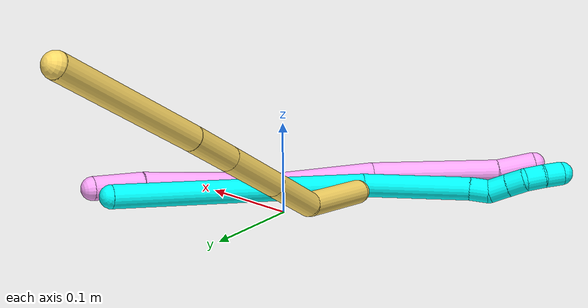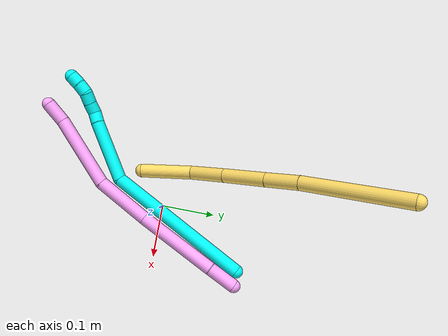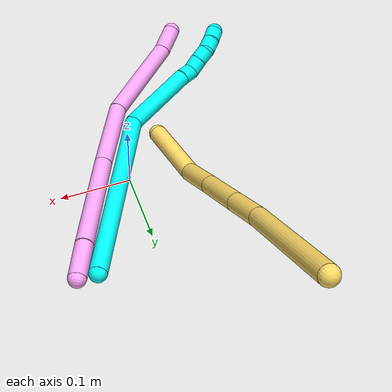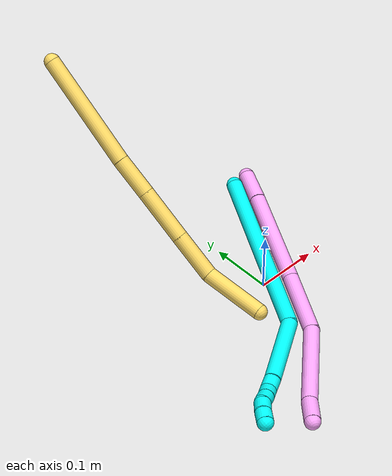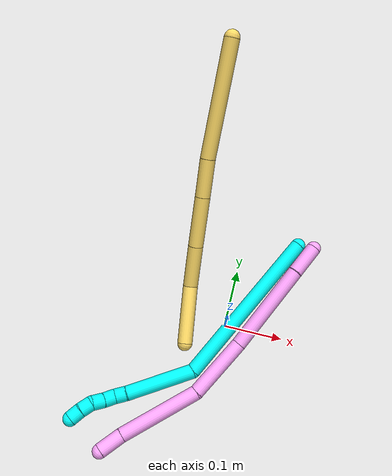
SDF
<sdf version="1.7">
 <world name="default">
  <model name="3">
   <static>0</static>
   <link name="3">
    <collision name="collision-cylinder-e_1_1_4">
     <pose>-0.031944 -0.07052 0.117905 0.539028 -0.228454 -0.063362</pose>
     <geometry><cylinder><radius>0.0125</radius><length>0.282101</length></cylinder></geometry>
     <surface>
      <friction><ode><mu>1.16</mu><mu2>1.16</mu2><slip1>0</slip1><slip2>0</slip2></ode></friction>
      <contact><ode><kp>1e+06</kp><kd>1</kd><max_vel>0</max_vel><min_depth>0.001</min_depth></ode></contact>
     </surface>
    </collision>
    <visual name="visual-cylinder-e_1_1_4">
     <pose>-0.031944 -0.07052 0.117905 0.539028 -0.228454 -0.063362</pose>
     <geometry><cylinder><radius>0.0125</radius><length>0.282101</length></cylinder></geometry>
     <material><ambient>0.003922 1 0.996078 1</ambient></material>
    </visual>
    <collision name="collision-cylinder-e_2_4_5">
     <pose>-0.07341 -0.191939 0.261907 1.09703 -0.164963 -0.100946</pose>
     <geometry><cylinder><radius>0.0125</radius><length>0.115971</length></cylinder></geometry>
     <surface>
      <friction><ode><mu>1.16</mu><mu2>1.16</mu2><slip1>0</slip1><slip2>0</slip2></ode></friction>
      <contact><ode><kp>1e+06</kp><kd>1</kd><max_vel>0</max_vel><min_depth>0.001</min_depth></ode></contact>
     </surface>
    </collision>
    <visual name="visual-cylinder-e_2_4_5">
     <pose>-0.07341 -0.191939 0.261907 1.09703 -0.164963 -0.100946</pose>
     <geometry><cylinder><radius>0.0125</radius><length>0.115971</length></cylinder></geometry>
     <material><ambient>0.003922 1 0.996078 1</ambient></material>
    </visual>
    <collision name="collision-cylinder-e_3_5_6">
     <pose>-0.083462 -0.252233 0.292317 1.14033 -0.051206 -0.032837</pose>
     <geometry><cylinder><radius>0.0125</radius><length>0.020705</length></cylinder></geometry>
     <surface>
      <friction><ode><mu>1.16</mu><mu2>1.16</mu2><slip1>0</slip1><slip2>0</slip2></ode></friction>
      <contact><ode><kp>1e+06</kp><kd>1</kd><max_vel>0</max_vel><min_depth>0.001</min_depth></ode></contact>
     </surface>
    </collision>
    <visual name="visual-cylinder-e_3_5_6">
     <pose>-0.083462 -0.252233 0.292317 1.14033 -0.051206 -0.032837</pose>
     <geometry><cylinder><radius>0.0125</radius><length>0.020705</length></cylinder></geometry>
     <material><ambient>0.003922 1 0.996078 1</ambient></material>
    </visual>
    <collision name="collision-cylinder-e_4_6_7">
     <pose>-0.089098 -0.270141 0.29975 1.21964 -0.512919 -0.362401</pose>
     <geometry><cylinder><radius>0.0125</radius><length>0.020809</length></cylinder></geometry>
     <surface>
      <friction><ode><mu>1.16</mu><mu2>1.16</mu2><slip1>0</slip1><slip2>0</slip2></ode></friction>
      <contact><ode><kp>1e+06</kp><kd>1</kd><max_vel>0</max_vel><min_depth>0.001</min_depth></ode></contact>
     </surface>
    </collision>
    <visual name="visual-cylinder-e_4_6_7">
     <pose>-0.089098 -0.270141 0.29975 1.21964 -0.512919 -0.362401</pose>
     <geometry><cylinder><radius>0.0125</radius><length>0.020809</length></cylinder></geometry>
     <material><ambient>0.003922 1 0.996078 1</ambient></material>
    </visual>
    <collision name="collision-cylinder-e_5_7_8">
     <pose>-0.098939 -0.287257 0.305043 1.32329 -0.490176 -0.384735</pose>
     <geometry><cylinder><radius>0.0125</radius><length>0.020118</length></cylinder></geometry>
     <surface>
      <friction><ode><mu>1.16</mu><mu2>1.16</mu2><slip1>0</slip1><slip2>0</slip2></ode></friction>
      <contact><ode><kp>1e+06</kp><kd>1</kd><max_vel>0</max_vel><min_depth>0.001</min_depth></ode></contact>
     </surface>
    </collision>
    <visual name="visual-cylinder-e_5_7_8">
     <pose>-0.098939 -0.287257 0.305043 1.32329 -0.490176 -0.384735</pose>
     <geometry><cylinder><radius>0.0125</radius><length>0.020118</length></cylinder></geometry>
     <material><ambient>0.003922 1 0.996078 1</ambient></material>
    </visual>
    <collision name="collision-cylinder-e_6_8_9">
     <pose>-0.107585 -0.303147 0.313093 0.892126 -0.395745 -0.191174</pose>
     <geometry><cylinder><radius>0.0125</radius><length>0.020288</length></cylinder></geometry>
     <surface>
      <friction><ode><mu>1.16</mu><mu2>1.16</mu2><slip1>0</slip1><slip2>0</slip2></ode></friction>
      <contact><ode><kp>1e+06</kp><kd>1</kd><max_vel>0</max_vel><min_depth>0.001</min_depth></ode></contact>
     </surface>
    </collision>
    <visual name="visual-cylinder-e_6_8_9">
     <pose>-0.107585 -0.303147 0.313093 0.892126 -0.395745 -0.191174</pose>
     <geometry><cylinder><radius>0.0125</radius><length>0.020288</length></cylinder></geometry>
     <material><ambient>0.003922 1 0.996078 1</ambient></material>
    </visual>
    <collision name="collision-cylinder-e_7_9_2">
     <pose>-0.114895 -0.316842 0.325858 0.7493 -0.346658 -0.137479</pose>
     <geometry><cylinder><radius>0.0125</radius><length>0.020008</length></cylinder></geometry>
     <surface>
      <friction><ode><mu>1.16</mu><mu2>1.16</mu2><slip1>0</slip1><slip2>0</slip2></ode></friction>
      <contact><ode><kp>1e+06</kp><kd>1</kd><max_vel>0</max_vel><min_depth>0.001</min_depth></ode></contact>
     </surface>
    </collision>
    <visual name="visual-cylinder-e_7_9_2">
     <pose>-0.114895 -0.316842 0.325858 0.7493 -0.346658 -0.137479</pose>
     <geometry><cylinder><radius>0.0125</radius><length>0.020008</length></cylinder></geometry>
     <material><ambient>0.003922 1 0.996078 1</ambient></material>
    </visual>
    <collision name="collision-sphere-2">
     <pose>-0.118294 -0.323251 0.332747 0 -0 0</pose>
     <geometry><sphere><radius>0.0125</radius></sphere></geometry>
     <surface>
      <friction><ode><mu>1.16</mu><mu2>1.16</mu2><slip1>0</slip1><slip2>0</slip2></ode></friction>
      <contact><ode><kp>1e+06</kp><kd>1</kd><max_vel>0</max_vel><min_depth>0.001</min_depth></ode></contact>
     </surface>
    </collision>
    <visual name="visual-sphere-2">
     <pose>-0.118294 -0.323251 0.332747 0 -0 0</pose>
     <geometry><sphere><radius>0.0125</radius></sphere></geometry>
     <material><ambient>0.003922 1 0.996078 1</ambient></material>
    </visual>
    <collision name="collision-sphere-9">
     <pose>-0.111496 -0.310433 0.318969 0 -0 0</pose>
     <geometry><sphere><radius>0.0125</radius></sphere></geometry>
     <surface>
      <friction><ode><mu>1.16</mu><mu2>1.16</mu2><slip1>0</slip1><slip2>0</slip2></ode></friction>
      <contact><ode><kp>1e+06</kp><kd>1</kd><max_vel>0</max_vel><min_depth>0.001</min_depth></ode></contact>
     </surface>
    </collision>
    <visual name="visual-sphere-9">
     <pose>-0.111496 -0.310433 0.318969 0 -0 0</pose>
     <geometry><sphere><radius>0.0125</radius></sphere></geometry>
     <material><ambient>0.003922 1 0.996078 1</ambient></material>
    </visual>
    <collision name="collision-sphere-4">
     <pose>-0.063888 -0.141041 0.235811 0 -0 0</pose>
     <geometry><sphere><radius>0.0125</radius></sphere></geometry>
     <surface>
      <friction><ode><mu>1.16</mu><mu2>1.16</mu2><slip1>0</slip1><slip2>0</slip2></ode></friction>
      <contact><ode><kp>1e+06</kp><kd>1</kd><max_vel>0</max_vel><min_depth>0.001</min_depth></ode></contact>
     </surface>
    </collision>
    <visual name="visual-sphere-4">
     <pose>-0.063888 -0.141041 0.235811 0 -0 0</pose>
     <geometry><sphere><radius>0.0125</radius></sphere></geometry>
     <material><ambient>0.003922 1 0.996078 1</ambient></material>
    </visual>
    <collision name="collision-sphere-1">
     <geometry><sphere><radius>0.0125</radius></sphere></geometry>
     <surface>
      <friction><ode><mu>1.16</mu><mu2>1.16</mu2><slip1>0</slip1><slip2>0</slip2></ode></friction>
      <contact><ode><kp>1e+06</kp><kd>1</kd><max_vel>0</max_vel><min_depth>0.001</min_depth></ode></contact>
     </surface>
    </collision>
    <visual name="visual-sphere-1">
     <geometry><sphere><radius>0.0125</radius></sphere></geometry>
     <material><ambient>0.003922 1 0.996078 1</ambient></material>
    </visual>
    <collision name="collision-sphere-8">
     <pose>-0.103675 -0.295861 0.307217 0 -0 0</pose>
     <geometry><sphere><radius>0.0125</radius></sphere></geometry>
     <surface>
      <friction><ode><mu>1.16</mu><mu2>1.16</mu2><slip1>0</slip1><slip2>0</slip2></ode></friction>
      <contact><ode><kp>1e+06</kp><kd>1</kd><max_vel>0</max_vel><min_depth>0.001</min_depth></ode></contact>
     </surface>
    </collision>
    <visual name="visual-sphere-8">
     <pose>-0.103675 -0.295861 0.307217 0 -0 0</pose>
     <geometry><sphere><radius>0.0125</radius></sphere></geometry>
     <material><ambient>0.003922 1 0.996078 1</ambient></material>
    </visual>
    <collision name="collision-sphere-5">
     <pose>-0.082932 -0.242838 0.288003 0 -0 0</pose>
     <geometry><sphere><radius>0.0125</radius></sphere></geometry>
     <surface>
      <friction><ode><mu>1.16</mu><mu2>1.16</mu2><slip1>0</slip1><slip2>0</slip2></ode></friction>
      <contact><ode><kp>1e+06</kp><kd>1</kd><max_vel>0</max_vel><min_depth>0.001</min_depth></ode></contact>
     </surface>
    </collision>
    <visual name="visual-sphere-5">
     <pose>-0.082932 -0.242838 0.288003 0 -0 0</pose>
     <geometry><sphere><radius>0.0125</radius></sphere></geometry>
     <material><ambient>0.003922 1 0.996078 1</ambient></material>
    </visual>
    <collision name="collision-sphere-6">
     <pose>-0.083992 -0.261629 0.296632 0 -0 0</pose>
     <geometry><sphere><radius>0.0125</radius></sphere></geometry>
     <surface>
      <friction><ode><mu>1.16</mu><mu2>1.16</mu2><slip1>0</slip1><slip2>0</slip2></ode></friction>
      <contact><ode><kp>1e+06</kp><kd>1</kd><max_vel>0</max_vel><min_depth>0.001</min_depth></ode></contact>
     </surface>
    </collision>
    <visual name="visual-sphere-6">
     <pose>-0.083992 -0.261629 0.296632 0 -0 0</pose>
     <geometry><sphere><radius>0.0125</radius></sphere></geometry>
     <material><ambient>0.003922 1 0.996078 1</ambient></material>
    </visual>
    <collision name="collision-sphere-7">
     <pose>-0.094203 -0.278653 0.302869 0 -0 0</pose>
     <geometry><sphere><radius>0.0125</radius></sphere></geometry>
     <surface>
      <friction><ode><mu>1.16</mu><mu2>1.16</mu2><slip1>0</slip1><slip2>0</slip2></ode></friction>
      <contact><ode><kp>1e+06</kp><kd>1</kd><max_vel>0</max_vel><min_depth>0.001</min_depth></ode></contact>
     </surface>
    </collision>
    <visual name="visual-sphere-7">
     <pose>-0.094203 -0.278653 0.302869 0 -0 0</pose>
     <geometry><sphere><radius>0.0125</radius></sphere></geometry>
     <material><ambient>0.003922 1 0.996078 1</ambient></material>
    </visual>
    <inertial>
     <pose>-0.055158 -0.142532 0.189867 0 -0 0</pose>
     <mass>0.5</mass>
     <inertia>
      <ixx>0.001828</ixx>
      <ixy>0</ixy>
      <ixz>0</ixz>
      <iyy>0.001537</iyy>
      <iyz>0</iyz>
      <izz>0.001542</izz>
     </inertia>
    </inertial>
   </link>
   <pose>0.091465 0.159957 0.044471 -3.00176 1.1367 1.76563</pose>
  </model>
  <model name="4">
   <static>0</static>
   <link name="4">
    <collision name="collision-cylinder-e_1_1_4">
     <pose>-0.001566 -0.00156 0.026613 0.05854 -0.058681 -0.001719</pose>
     <geometry><cylinder><radius>0.0125</radius><length>0.053409</length></cylinder></geometry>
     <surface>
      <friction><ode><mu>1.16</mu><mu2>1.16</mu2><slip1>0</slip1><slip2>0</slip2></ode></friction>
      <contact><ode><kp>1e+06</kp><kd>1</kd><max_vel>0</max_vel><min_depth>0.001</min_depth></ode></contact>
     </surface>
    </collision>
    <visual name="visual-cylinder-e_1_1_4">
     <pose>-0.001566 -0.00156 0.026613 0.05854 -0.058681 -0.001719</pose>
     <geometry><cylinder><radius>0.0125</radius><length>0.053409</length></cylinder></geometry>
     <material><ambient>1 0.65098 0.996078 1</ambient></material>
    </visual>
    <collision name="collision-cylinder-e_2_4_5">
     <pose>-0.009138 -0.015057 0.130981 0.152334 -0.076198 -0.005818</pose>
     <geometry><cylinder><radius>0.0125</radius><length>0.157789</length></cylinder></geometry>
     <surface>
      <friction><ode><mu>1.16</mu><mu2>1.16</mu2><slip1>0</slip1><slip2>0</slip2></ode></friction>
      <contact><ode><kp>1e+06</kp><kd>1</kd><max_vel>0</max_vel><min_depth>0.001</min_depth></ode></contact>
     </surface>
    </collision>
    <visual name="visual-cylinder-e_2_4_5">
     <pose>-0.009138 -0.015057 0.130981 0.152334 -0.076198 -0.005818</pose>
     <geometry><cylinder><radius>0.0125</radius><length>0.157789</length></cylinder></geometry>
     <material><ambient>1 0.65098 0.996078 1</ambient></material>
    </visual>
    <collision name="collision-cylinder-e_3_5_6">
     <pose>-0.020861 -0.027662 0.262031 0.012536 -0.106848 -0.00067</pose>
     <geometry><cylinder><radius>0.0125</radius><length>0.107211</length></cylinder></geometry>
     <surface>
      <friction><ode><mu>1.16</mu><mu2>1.16</mu2><slip1>0</slip1><slip2>0</slip2></ode></friction>
      <contact><ode><kp>1e+06</kp><kd>1</kd><max_vel>0</max_vel><min_depth>0.001</min_depth></ode></contact>
     </surface>
    </collision>
    <visual name="visual-cylinder-e_3_5_6">
     <pose>-0.020861 -0.027662 0.262031 0.012536 -0.106848 -0.00067</pose>
     <geometry><cylinder><radius>0.0125</radius><length>0.107211</length></cylinder></geometry>
     <material><ambient>1 0.65098 0.996078 1</ambient></material>
    </visual>
    <collision name="collision-cylinder-e_4_6_7">
     <pose>-0.055213 -0.022977 0.378972 -0.083904 -0.421475 0.017958</pose>
     <geometry><cylinder><radius>0.0125</radius><length>0.139991</length></cylinder></geometry>
     <surface>
      <friction><ode><mu>1.16</mu><mu2>1.16</mu2><slip1>0</slip1><slip2>0</slip2></ode></friction>
      <contact><ode><kp>1e+06</kp><kd>1</kd><max_vel>0</max_vel><min_depth>0.001</min_depth></ode></contact>
     </surface>
    </collision>
    <visual name="visual-cylinder-e_4_6_7">
     <pose>-0.055213 -0.022977 0.378972 -0.083904 -0.421475 0.017958</pose>
     <geometry><cylinder><radius>0.0125</radius><length>0.139991</length></cylinder></geometry>
     <material><ambient>1 0.65098 0.996078 1</ambient></material>
    </visual>
    <collision name="collision-cylinder-e_5_7_2">
     <pose>-0.089494 -0.013458 0.462198 -0.209651 -0.27487 0.029101</pose>
     <geometry><cylinder><radius>0.0125</radius><length>0.0416</length></cylinder></geometry>
     <surface>
      <friction><ode><mu>1.16</mu><mu2>1.16</mu2><slip1>0</slip1><slip2>0</slip2></ode></friction>
      <contact><ode><kp>1e+06</kp><kd>1</kd><max_vel>0</max_vel><min_depth>0.001</min_depth></ode></contact>
     </surface>
    </collision>
    <visual name="visual-cylinder-e_5_7_2">
     <pose>-0.089494 -0.013458 0.462198 -0.209651 -0.27487 0.029101</pose>
     <geometry><cylinder><radius>0.0125</radius><length>0.0416</length></cylinder></geometry>
     <material><ambient>1 0.65098 0.996078 1</ambient></material>
    </visual>
    <collision name="collision-sphere-2">
     <pose>-0.09514 -0.009292 0.481778 0 -0 0</pose>
     <geometry><sphere><radius>0.0125</radius></sphere></geometry>
     <surface>
      <friction><ode><mu>1.16</mu><mu2>1.16</mu2><slip1>0</slip1><slip2>0</slip2></ode></friction>
      <contact><ode><kp>1e+06</kp><kd>1</kd><max_vel>0</max_vel><min_depth>0.001</min_depth></ode></contact>
     </surface>
    </collision>
    <visual name="visual-sphere-2">
     <pose>-0.09514 -0.009292 0.481778 0 -0 0</pose>
     <geometry><sphere><radius>0.0125</radius></sphere></geometry>
     <material><ambient>1 0.65098 0.996078 1</ambient></material>
    </visual>
    <collision name="collision-sphere-7">
     <pose>-0.083849 -0.017625 0.442617 0 -0 0</pose>
     <geometry><sphere><radius>0.0125</radius></sphere></geometry>
     <surface>
      <friction><ode><mu>1.16</mu><mu2>1.16</mu2><slip1>0</slip1><slip2>0</slip2></ode></friction>
      <contact><ode><kp>1e+06</kp><kd>1</kd><max_vel>0</max_vel><min_depth>0.001</min_depth></ode></contact>
     </surface>
    </collision>
    <visual name="visual-sphere-7">
     <pose>-0.083849 -0.017625 0.442617 0 -0 0</pose>
     <geometry><sphere><radius>0.0125</radius></sphere></geometry>
     <material><ambient>1 0.65098 0.996078 1</ambient></material>
    </visual>
    <collision name="collision-sphere-6">
     <pose>-0.026577 -0.02833 0.315326 0 -0 0</pose>
     <geometry><sphere><radius>0.0125</radius></sphere></geometry>
     <surface>
      <friction><ode><mu>1.16</mu><mu2>1.16</mu2><slip1>0</slip1><slip2>0</slip2></ode></friction>
      <contact><ode><kp>1e+06</kp><kd>1</kd><max_vel>0</max_vel><min_depth>0.001</min_depth></ode></contact>
     </surface>
    </collision>
    <visual name="visual-sphere-6">
     <pose>-0.026577 -0.02833 0.315326 0 -0 0</pose>
     <geometry><sphere><radius>0.0125</radius></sphere></geometry>
     <material><ambient>1 0.65098 0.996078 1</ambient></material>
    </visual>
    <collision name="collision-sphere-5">
     <pose>-0.015144 -0.026994 0.208735 0 -0 0</pose>
     <geometry><sphere><radius>0.0125</radius></sphere></geometry>
     <surface>
      <friction><ode><mu>1.16</mu><mu2>1.16</mu2><slip1>0</slip1><slip2>0</slip2></ode></friction>
      <contact><ode><kp>1e+06</kp><kd>1</kd><max_vel>0</max_vel><min_depth>0.001</min_depth></ode></contact>
     </surface>
    </collision>
    <visual name="visual-sphere-5">
     <pose>-0.015144 -0.026994 0.208735 0 -0 0</pose>
     <geometry><sphere><radius>0.0125</radius></sphere></geometry>
     <material><ambient>1 0.65098 0.996078 1</ambient></material>
    </visual>
    <collision name="collision-sphere-1">
     <geometry><sphere><radius>0.0125</radius></sphere></geometry>
     <surface>
      <friction><ode><mu>1.16</mu><mu2>1.16</mu2><slip1>0</slip1><slip2>0</slip2></ode></friction>
      <contact><ode><kp>1e+06</kp><kd>1</kd><max_vel>0</max_vel><min_depth>0.001</min_depth></ode></contact>
     </surface>
    </collision>
    <visual name="visual-sphere-1">
     <geometry><sphere><radius>0.0125</radius></sphere></geometry>
     <material><ambient>1 0.65098 0.996078 1</ambient></material>
    </visual>
    <collision name="collision-sphere-4">
     <pose>-0.003132 -0.003119 0.053226 0 -0 0</pose>
     <geometry><sphere><radius>0.0125</radius></sphere></geometry>
     <surface>
      <friction><ode><mu>1.16</mu><mu2>1.16</mu2><slip1>0</slip1><slip2>0</slip2></ode></friction>
      <contact><ode><kp>1e+06</kp><kd>1</kd><max_vel>0</max_vel><min_depth>0.001</min_depth></ode></contact>
     </surface>
    </collision>
    <visual name="visual-sphere-4">
     <pose>-0.003132 -0.003119 0.053226 0 -0 0</pose>
     <geometry><sphere><radius>0.0125</radius></sphere></geometry>
     <material><ambient>1 0.65098 0.996078 1</ambient></material>
    </visual>
    <inertial>
     <pose>-0.030429 -0.018402 0.244922 0 -0 0</pose>
     <mass>0.5</mass>
     <inertia>
      <ixx>0.000669</ixx>
      <ixy>0</ixy>
      <ixz>0</ixz>
      <iyy>0.000693</iyy>
      <iyz>0</iyz>
      <izz>0.000206</izz>
     </inertia>
    </inertial>
   </link>
   <pose>0.118571 0.160181 0.046605 1.5763 -0.170303 -0.39191</pose>
  </model>
  <model name="5">
   <static>0</static>
   <link name="5">
    <collision name="collision-cylinder-e_1_1_4">
     <pose>0.013912 -0.008417 -0.090322 3.04867 0.15218 2.04633</pose>
     <geometry><cylinder><radius>0.0125</radius><length>0.183547</length></cylinder></geometry>
     <surface>
      <friction><ode><mu>1.16</mu><mu2>1.16</mu2><slip1>0</slip1><slip2>0</slip2></ode></friction>
      <contact><ode><kp>1e+06</kp><kd>1</kd><max_vel>0</max_vel><min_depth>0.001</min_depth></ode></contact>
     </surface>
    </collision>
    <visual name="visual-cylinder-e_1_1_4">
     <pose>0.013912 -0.008417 -0.090322 3.04867 0.15218 2.04633</pose>
     <geometry><cylinder><radius>0.0125</radius><length>0.183547</length></cylinder></geometry>
     <material><ambient>1 0.858824 0.4 1</ambient></material>
    </visual>
    <collision name="collision-cylinder-e_2_4_5">
     <pose>0.032512 -0.021638 -0.210979 2.98452 0.151442 1.53415</pose>
     <geometry><cylinder><radius>0.0125</radius><length>0.062139</length></cylinder></geometry>
     <surface>
      <friction><ode><mu>1.16</mu><mu2>1.16</mu2><slip1>0</slip1><slip2>0</slip2></ode></friction>
      <contact><ode><kp>1e+06</kp><kd>1</kd><max_vel>0</max_vel><min_depth>0.001</min_depth></ode></contact>
     </surface>
    </collision>
    <visual name="visual-cylinder-e_2_4_5">
     <pose>0.032512 -0.021638 -0.210979 2.98452 0.151442 1.53415</pose>
     <geometry><cylinder><radius>0.0125</radius><length>0.062139</length></cylinder></geometry>
     <material><ambient>1 0.858824 0.4 1</ambient></material>
    </visual>
    <collision name="collision-cylinder-e_3_5_6">
     <pose>0.043713 -0.032655 -0.282348 2.99134 0.15569 1.60648</pose>
     <geometry><cylinder><radius>0.0125</radius><length>0.084017</length></cylinder></geometry>
     <surface>
      <friction><ode><mu>1.16</mu><mu2>1.16</mu2><slip1>0</slip1><slip2>0</slip2></ode></friction>
      <contact><ode><kp>1e+06</kp><kd>1</kd><max_vel>0</max_vel><min_depth>0.001</min_depth></ode></contact>
     </surface>
    </collision>
    <visual name="visual-cylinder-e_3_5_6">
     <pose>0.043713 -0.032655 -0.282348 2.99134 0.15569 1.60648</pose>
     <geometry><cylinder><radius>0.0125</radius><length>0.084017</length></cylinder></geometry>
     <material><ambient>1 0.858824 0.4 1</ambient></material>
    </visual>
    <collision name="collision-cylinder-e_4_6_7">
     <pose>0.055928 -0.044568 -0.35871 2.9816 0.157977 1.55809</pose>
     <geometry><cylinder><radius>0.0125</radius><length>0.072475</length></cylinder></geometry>
     <surface>
      <friction><ode><mu>1.16</mu><mu2>1.16</mu2><slip1>0</slip1><slip2>0</slip2></ode></friction>
      <contact><ode><kp>1e+06</kp><kd>1</kd><max_vel>0</max_vel><min_depth>0.001</min_depth></ode></contact>
     </surface>
    </collision>
    <visual name="visual-cylinder-e_4_6_7">
     <pose>0.055928 -0.044568 -0.35871 2.9816 0.157977 1.55809</pose>
     <geometry><cylinder><radius>0.0125</radius><length>0.072475</length></cylinder></geometry>
     <material><ambient>1 0.858824 0.4 1</ambient></material>
    </visual>
    <collision name="collision-cylinder-e_5_7_2">
     <pose>0.049259 -0.060317 -0.440281 2.92762 -0.255688 -1.7496</pose>
     <geometry><cylinder><radius>0.0125</radius><length>0.097822</length></cylinder></geometry>
     <surface>
      <friction><ode><mu>1.16</mu><mu2>1.16</mu2><slip1>0</slip1><slip2>0</slip2></ode></friction>
      <contact><ode><kp>1e+06</kp><kd>1</kd><max_vel>0</max_vel><min_depth>0.001</min_depth></ode></contact>
     </surface>
    </collision>
    <visual name="visual-cylinder-e_5_7_2">
     <pose>0.049259 -0.060317 -0.440281 2.92762 -0.255688 -1.7496</pose>
     <geometry><cylinder><radius>0.0125</radius><length>0.097822</length></cylinder></geometry>
     <material><ambient>1 0.858824 0.4 1</ambient></material>
    </visual>
    <collision name="collision-sphere-2">
     <pose>0.036889 -0.070365 -0.486522 0 -0 0</pose>
     <geometry><sphere><radius>0.0125</radius></sphere></geometry>
     <surface>
      <friction><ode><mu>1.16</mu><mu2>1.16</mu2><slip1>0</slip1><slip2>0</slip2></ode></friction>
      <contact><ode><kp>1e+06</kp><kd>1</kd><max_vel>0</max_vel><min_depth>0.001</min_depth></ode></contact>
     </surface>
    </collision>
    <visual name="visual-sphere-2">
     <pose>0.036889 -0.070365 -0.486522 0 -0 0</pose>
     <geometry><sphere><radius>0.0125</radius></sphere></geometry>
     <material><ambient>1 0.858824 0.4 1</ambient></material>
    </visual>
    <collision name="collision-sphere-7">
     <pose>0.061629 -0.050269 -0.394039 0 -0 0</pose>
     <geometry><sphere><radius>0.0125</radius></sphere></geometry>
     <surface>
      <friction><ode><mu>1.16</mu><mu2>1.16</mu2><slip1>0</slip1><slip2>0</slip2></ode></friction>
      <contact><ode><kp>1e+06</kp><kd>1</kd><max_vel>0</max_vel><min_depth>0.001</min_depth></ode></contact>
     </surface>
    </collision>
    <visual name="visual-sphere-7">
     <pose>0.061629 -0.050269 -0.394039 0 -0 0</pose>
     <geometry><sphere><radius>0.0125</radius></sphere></geometry>
     <material><ambient>1 0.858824 0.4 1</ambient></material>
    </visual>
    <collision name="collision-sphere-6">
     <pose>0.050227 -0.038867 -0.323381 0 -0 0</pose>
     <geometry><sphere><radius>0.0125</radius></sphere></geometry>
     <surface>
      <friction><ode><mu>1.16</mu><mu2>1.16</mu2><slip1>0</slip1><slip2>0</slip2></ode></friction>
      <contact><ode><kp>1e+06</kp><kd>1</kd><max_vel>0</max_vel><min_depth>0.001</min_depth></ode></contact>
     </surface>
    </collision>
    <visual name="visual-sphere-6">
     <pose>0.050227 -0.038867 -0.323381 0 -0 0</pose>
     <geometry><sphere><radius>0.0125</radius></sphere></geometry>
     <material><ambient>1 0.858824 0.4 1</ambient></material>
    </visual>
    <collision name="collision-sphere-5">
     <pose>0.037199 -0.026443 -0.241315 0 -0 0</pose>
     <geometry><sphere><radius>0.0125</radius></sphere></geometry>
     <surface>
      <friction><ode><mu>1.16</mu><mu2>1.16</mu2><slip1>0</slip1><slip2>0</slip2></ode></friction>
      <contact><ode><kp>1e+06</kp><kd>1</kd><max_vel>0</max_vel><min_depth>0.001</min_depth></ode></contact>
     </surface>
    </collision>
    <visual name="visual-sphere-5">
     <pose>0.037199 -0.026443 -0.241315 0 -0 0</pose>
     <geometry><sphere><radius>0.0125</radius></sphere></geometry>
     <material><ambient>1 0.858824 0.4 1</ambient></material>
    </visual>
    <collision name="collision-sphere-1">
     <geometry><sphere><radius>0.0125</radius></sphere></geometry>
     <surface>
      <friction><ode><mu>1.16</mu><mu2>1.16</mu2><slip1>0</slip1><slip2>0</slip2></ode></friction>
      <contact><ode><kp>1e+06</kp><kd>1</kd><max_vel>0</max_vel><min_depth>0.001</min_depth></ode></contact>
     </surface>
    </collision>
    <visual name="visual-sphere-1">
     <geometry><sphere><radius>0.0125</radius></sphere></geometry>
     <material><ambient>1 0.858824 0.4 1</ambient></material>
    </visual>
    <collision name="collision-sphere-4">
     <pose>0.027825 -0.016834 -0.180643 0 -0 0</pose>
     <geometry><sphere><radius>0.0125</radius></sphere></geometry>
     <surface>
      <friction><ode><mu>1.16</mu><mu2>1.16</mu2><slip1>0</slip1><slip2>0</slip2></ode></friction>
      <contact><ode><kp>1e+06</kp><kd>1</kd><max_vel>0</max_vel><min_depth>0.001</min_depth></ode></contact>
     </surface>
    </collision>
    <visual name="visual-sphere-4">
     <pose>0.027825 -0.016834 -0.180643 0 -0 0</pose>
     <geometry><sphere><radius>0.0125</radius></sphere></geometry>
     <material><ambient>1 0.858824 0.4 1</ambient></material>
    </visual>
    <inertial>
     <pose>0.034237 -0.029527 -0.244954 0 -0 0</pose>
     <mass>0.5</mass>
     <inertia>
      <ixx>0.000241</ixx>
      <ixy>0</ixy>
      <ixz>0</ixz>
      <iyy>0.000751</iyy>
      <iyz>0</iyz>
      <izz>-3.2e-05</izz>
     </inertia>
    </inertial>
   </link>
   <pose>-0.089908 0.375229 0.270869 0.173951 1.11976 1.67736</pose>
  </model>
 </world>
</sdf>
